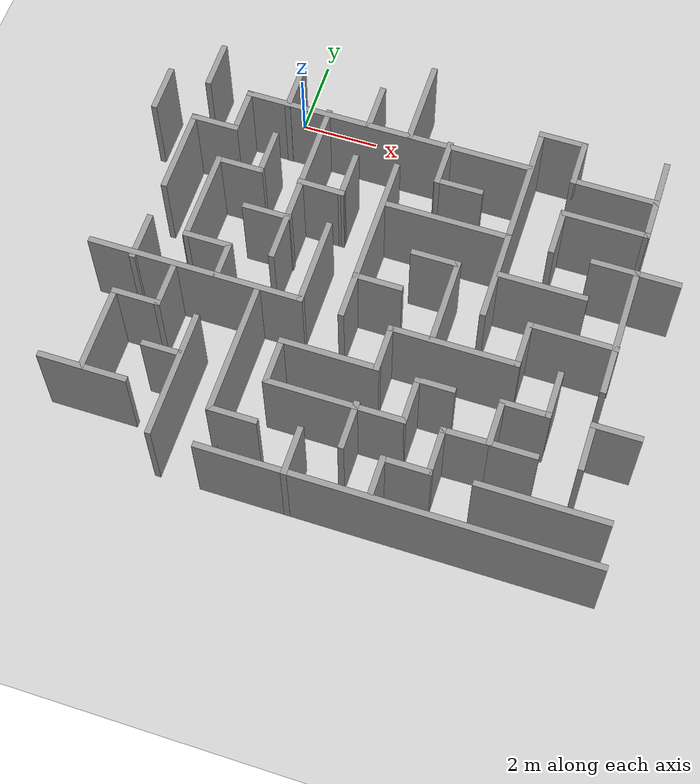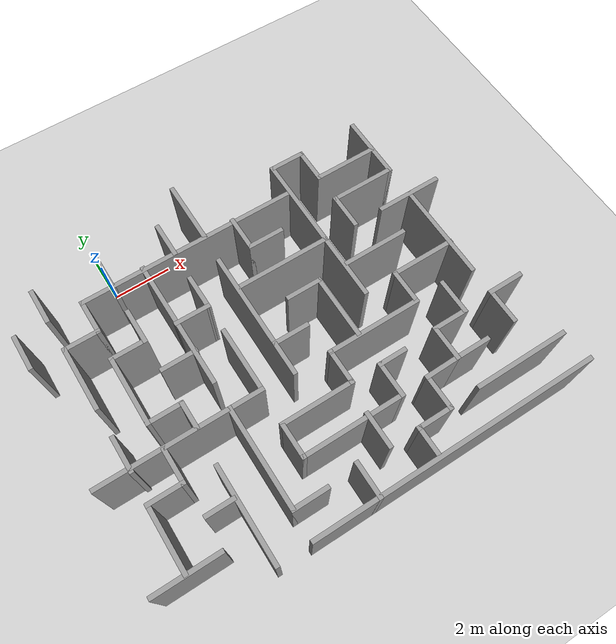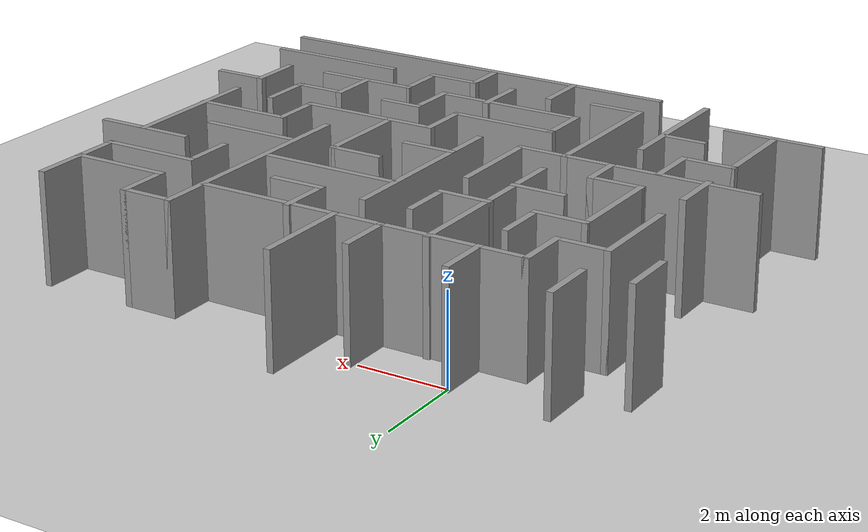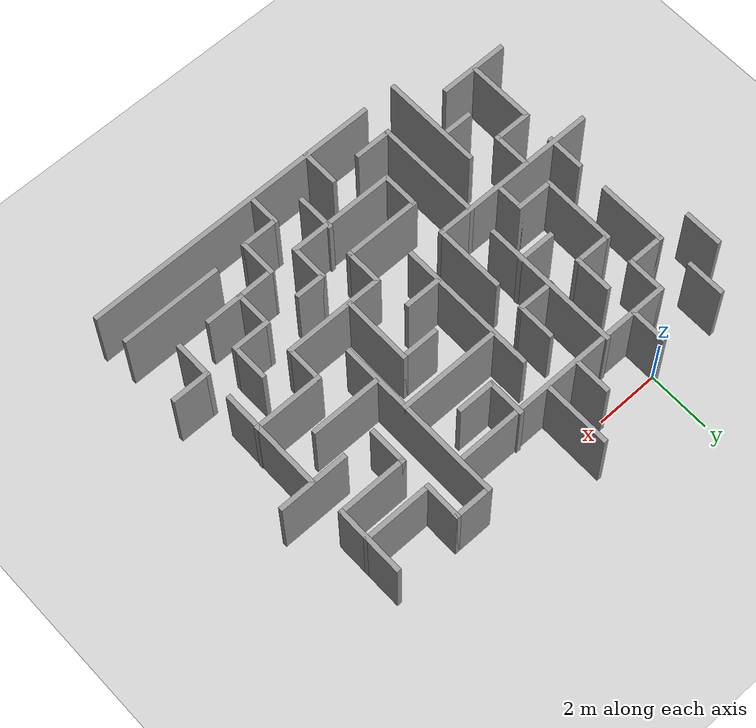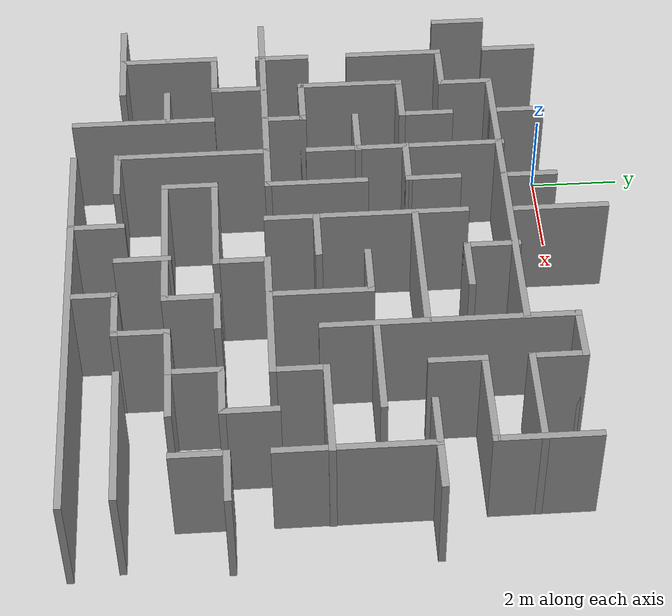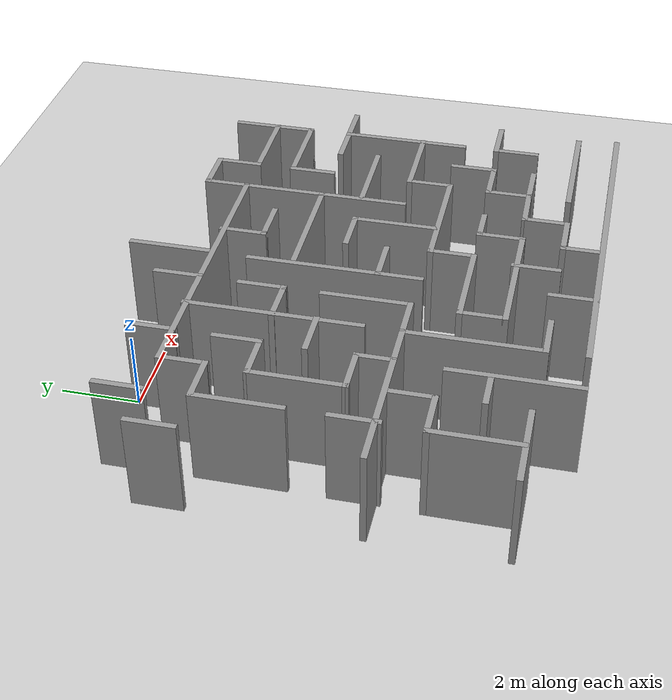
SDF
<sdf version="1.7">
 <world name="default">
  <model name="ground_plane">
   <static>1</static>
   <link name="link">
    <collision name="collision">
     <geometry><plane><normal>0 0 1</normal><size>100 100</size></plane></geometry>
     <surface><friction><ode><mu>100</mu><mu2>50</mu2></ode></friction></surface>
    </collision>
    <visual name="visual">
     <cast_shadows>0</cast_shadows>
     <geometry><plane><normal>0 0 1</normal><size>100 100</size></plane></geometry>
     <material>
      <script><uri>file://media/materials/scripts/gazebo.material</uri><name>Gazebo/Grey</name></script>
     </material>
    </visual>
   </link>
  </model>
  <model name="Maze_ej4">
   <pose>-0.00055 0.06164 0 0 -0 0</pose>
   <link name="Wall_103">
    <collision name="Wall_103_Collision">
     <geometry><box><size>1.25 0.15 2.5</size></box></geometry>
     <pose>0 0 1.25 0 -0 0</pose>
    </collision>
    <visual name="Wall_103_Visual">
     <pose>0 0 1.25 0 -0 0</pose>
     <geometry><box><size>1.25 0.15 2.5</size></box></geometry>
     <material>
      <script><uri>file://media/materials/scripts/gazebo.material</uri><name>Gazebo/Grey</name></script>
      <ambient>1 1 1 1</ambient>
     </material>
     <meta><layer>0</layer></meta>
    </visual>
    <pose>-1.63534 -7.51693 0 0 -0 0</pose>
   </link>
   <link name="Wall_104">
    <collision name="Wall_104_Collision">
     <geometry><box><size>1.25 0.15 2.5</size></box></geometry>
     <pose>0 0 1.25 0 -0 0</pose>
    </collision>
    <visual name="Wall_104_Visual">
     <pose>0 0 1.25 0 -0 0</pose>
     <geometry><box><size>1.25 0.15 2.5</size></box></geometry>
     <material>
      <script><uri>file://media/materials/scripts/gazebo.material</uri><name>Gazebo/Grey</name></script>
      <ambient>1 1 1 1</ambient>
     </material>
     <meta><layer>0</layer></meta>
    </visual>
    <pose>-1.08534 -6.96694 0 0 -0 1.5708</pose>
   </link>
   <link name="Wall_116">
    <collision name="Wall_116_Collision">
     <geometry><box><size>2.25 0.15 2.5</size></box></geometry>
     <pose>0 0 1.25 0 -0 0</pose>
    </collision>
    <visual name="Wall_116_Visual">
     <pose>0 0 1.25 0 -0 0</pose>
     <geometry><box><size>2.25 0.15 2.5</size></box></geometry>
     <material>
      <script><uri>file://media/materials/scripts/gazebo.material</uri><name>Gazebo/Grey</name></script>
      <ambient>1 1 1 1</ambient>
     </material>
     <meta><layer>0</layer></meta>
    </visual>
    <pose>8.55467 -5.36811 0 0 -0 3.14159</pose>
   </link>
   <link name="Wall_117">
    <collision name="Wall_117_Collision">
     <geometry><box><size>1.25 0.15 2.5</size></box></geometry>
     <pose>0 0 1.25 0 -0 0</pose>
    </collision>
    <visual name="Wall_117_Visual">
     <pose>0 0 1.25 0 -0 0</pose>
     <geometry><box><size>1.25 0.15 2.5</size></box></geometry>
     <material>
      <script><uri>file://media/materials/scripts/gazebo.material</uri><name>Gazebo/Grey</name></script>
      <ambient>1 1 1 1</ambient>
     </material>
     <meta><layer>0</layer></meta>
    </visual>
    <pose>7.50467 -5.91811 0 0 -0 -1.5708</pose>
   </link>
   <link name="Wall_118">
    <collision name="Wall_118_Collision">
     <geometry><box><size>3.25 0.15 2.5</size></box></geometry>
     <pose>0 0 1.25 0 -0 0</pose>
    </collision>
    <visual name="Wall_118_Visual">
     <pose>0 0 1.25 0 -0 0</pose>
     <geometry><box><size>3.25 0.15 2.5</size></box></geometry>
     <material>
      <script><uri>file://media/materials/scripts/gazebo.material</uri><name>Gazebo/Grey</name></script>
      <ambient>1 1 1 1</ambient>
     </material>
     <meta><layer>0</layer></meta>
    </visual>
    <pose>5.95467 -6.46811 0 0 -0 3.14159</pose>
   </link>
   <link name="Wall_119">
    <collision name="Wall_119_Collision">
     <geometry><box><size>1.25 0.15 2.5</size></box></geometry>
     <pose>0 0 1.25 0 -0 0</pose>
    </collision>
    <visual name="Wall_119_Visual">
     <pose>0 0 1.25 0 -0 0</pose>
     <geometry><box><size>1.25 0.15 2.5</size></box></geometry>
     <material>
      <script><uri>file://media/materials/scripts/gazebo.material</uri><name>Gazebo/Grey</name></script>
      <ambient>1 1 1 1</ambient>
     </material>
     <meta><layer>0</layer></meta>
    </visual>
    <pose>4.40467 -7.01811 0 0 -0 -1.5708</pose>
   </link>
   <link name="Wall_120">
    <collision name="Wall_120_Collision">
     <geometry><box><size>2.5 0.15 2.5</size></box></geometry>
     <pose>0 0 1.25 0 -0 0</pose>
    </collision>
    <visual name="Wall_120_Visual">
     <pose>0 0 1.25 0 -0 0</pose>
     <geometry><box><size>2.5 0.15 2.5</size></box></geometry>
     <material>
      <script><uri>file://media/materials/scripts/gazebo.material</uri><name>Gazebo/Grey</name></script>
      <ambient>1 1 1 1</ambient>
     </material>
     <meta><layer>0</layer></meta>
    </visual>
    <pose>3.22967 -7.56811 0 0 -0 3.14159</pose>
   </link>
   <link name="Wall_121">
    <collision name="Wall_121_Collision">
     <geometry><box><size>1.25 0.15 2.5</size></box></geometry>
     <pose>0 0 1.25 0 -0 0</pose>
    </collision>
    <visual name="Wall_121_Visual">
     <pose>0 0 1.25 0 -0 0</pose>
     <geometry><box><size>1.25 0.15 2.5</size></box></geometry>
     <material>
      <script><uri>file://media/materials/scripts/gazebo.material</uri><name>Gazebo/Grey</name></script>
      <ambient>1 1 1 1</ambient>
     </material>
     <meta><layer>0</layer></meta>
    </visual>
    <pose>2.05467 -8.11811 0 0 -0 -1.5708</pose>
   </link>
   <link name="Wall_122">
    <collision name="Wall_122_Collision">
     <geometry><box><size>3.5 0.15 2.5</size></box></geometry>
     <pose>0 0 1.25 0 -0 0</pose>
    </collision>
    <visual name="Wall_122_Visual">
     <pose>0 0 1.25 0 -0 0</pose>
     <geometry><box><size>3.5 0.15 2.5</size></box></geometry>
     <material>
      <script><uri>file://media/materials/scripts/gazebo.material</uri><name>Gazebo/Grey</name></script>
      <ambient>1 1 1 1</ambient>
     </material>
     <meta><layer>0</layer></meta>
    </visual>
    <pose>3.72967 -8.66811 0 0 -0 0</pose>
   </link>
   <link name="Wall_123">
    <collision name="Wall_123_Collision">
     <geometry><box><size>1.25 0.15 2.5</size></box></geometry>
     <pose>0 0 1.25 0 -0 0</pose>
    </collision>
    <visual name="Wall_123_Visual">
     <pose>0 0 1.25 0 -0 0</pose>
     <geometry><box><size>1.25 0.15 2.5</size></box></geometry>
     <material>
      <script><uri>file://media/materials/scripts/gazebo.material</uri><name>Gazebo/Grey</name></script>
      <ambient>1 1 1 1</ambient>
     </material>
     <meta><layer>0</layer></meta>
    </visual>
    <pose>5.40467 -8.11811 0 0 -0 1.5708</pose>
   </link>
   <link name="Wall_124">
    <collision name="Wall_124_Collision">
     <geometry><box><size>1 0.15 2.5</size></box></geometry>
     <pose>0 0 1.25 0 -0 0</pose>
    </collision>
    <visual name="Wall_124_Visual">
     <pose>0 0 1.25 0 -0 0</pose>
     <geometry><box><size>1 0.15 2.5</size></box></geometry>
     <material>
      <script><uri>file://media/materials/scripts/gazebo.material</uri><name>Gazebo/Grey</name></script>
      <ambient>1 1 1 1</ambient>
     </material>
     <meta><layer>0</layer></meta>
    </visual>
    <pose>5.82967 -7.56811 0 0 -0 0</pose>
   </link>
   <link name="Wall_129">
    <collision name="Wall_129_Collision">
     <geometry><box><size>1.25 0.15 2.5</size></box></geometry>
     <pose>0 0 1.25 0 -0 0</pose>
    </collision>
    <visual name="Wall_129_Visual">
     <pose>0 0 1.25 0 -0 0</pose>
     <geometry><box><size>1.25 0.15 2.5</size></box></geometry>
     <material>
      <script><uri>file://media/materials/scripts/gazebo.material</uri><name>Gazebo/Grey</name></script>
      <ambient>1 1 1 1</ambient>
     </material>
     <meta><layer>0</layer></meta>
    </visual>
    <pose>3.20667 -10.1551 0 0 -0 1.5708</pose>
   </link>
   <link name="Wall_131">
    <collision name="Wall_131_Collision">
     <geometry><box><size>1.25 0.15 2.5</size></box></geometry>
     <pose>0 0 1.25 0 -0 0</pose>
    </collision>
    <visual name="Wall_131_Visual">
     <pose>0 0 1.25 0 -0 0</pose>
     <geometry><box><size>1.25 0.15 2.5</size></box></geometry>
     <material>
      <script><uri>file://media/materials/scripts/gazebo.material</uri><name>Gazebo/Grey</name></script>
      <ambient>1 1 1 1</ambient>
     </material>
     <meta><layer>0</layer></meta>
    </visual>
    <pose>8.53131 -6.96633 0 0 -0 -1.5708</pose>
   </link>
   <link name="Wall_132">
    <collision name="Wall_132_Collision">
     <geometry><box><size>1.25 0.15 2.5</size></box></geometry>
     <pose>0 0 1.25 0 -0 0</pose>
    </collision>
    <visual name="Wall_132_Visual">
     <pose>0 0 1.25 0 -0 0</pose>
     <geometry><box><size>1.25 0.15 2.5</size></box></geometry>
     <material>
      <script><uri>file://media/materials/scripts/gazebo.material</uri><name>Gazebo/Grey</name></script>
      <ambient>1 1 1 1</ambient>
     </material>
     <meta><layer>0</layer></meta>
    </visual>
    <pose>7.98132 -7.51633 0 0 -0 3.14159</pose>
   </link>
   <link name="Wall_133">
    <collision name="Wall_133_Collision">
     <geometry><box><size>1.23183 0.15 2.5</size></box></geometry>
     <pose>0 0 1.25 0 -0 0</pose>
    </collision>
    <visual name="Wall_133_Visual">
     <pose>0 0 1.25 0 -0 0</pose>
     <geometry><box><size>1.23183 0.15 2.5</size></box></geometry>
     <material>
      <script><uri>file://media/materials/scripts/gazebo.material</uri><name>Gazebo/Grey</name></script>
      <ambient>1 1 1 1</ambient>
     </material>
     <meta><layer>0</layer></meta>
    </visual>
    <pose>7.43131 -8.05724 0 0 -0 -1.5708</pose>
   </link>
   <link name="Wall_134">
    <collision name="Wall_134_Collision">
     <geometry><box><size>1.25015 0.15 2.5</size></box></geometry>
     <pose>0 0 1.25 0 -0 0</pose>
    </collision>
    <visual name="Wall_134_Visual">
     <pose>0 0 1.25 0 -0 0</pose>
     <geometry><box><size>1.25015 0.15 2.5</size></box></geometry>
     <material>
      <script><uri>file://media/materials/scripts/gazebo.material</uri><name>Gazebo/Grey</name></script>
      <ambient>1 1 1 1</ambient>
     </material>
     <meta><layer>0</layer></meta>
    </visual>
    <pose>6.88131 -8.60724 0 0 -0 -3.12507</pose>
   </link>
   <link name="Wall_135">
    <collision name="Wall_135_Collision">
     <geometry><box><size>1.25 0.15 2.5</size></box></geometry>
     <pose>0 0 1.25 0 -0 0</pose>
    </collision>
    <visual name="Wall_135_Visual">
     <pose>0 0 1.25 0 -0 0</pose>
     <geometry><box><size>1.25 0.15 2.5</size></box></geometry>
     <material>
      <script><uri>file://media/materials/scripts/gazebo.material</uri><name>Gazebo/Grey</name></script>
      <ambient>1 1 1 1</ambient>
     </material>
     <meta><layer>0</layer></meta>
    </visual>
    <pose>6.33132 -9.16633 0 0 -0 -1.5708</pose>
   </link>
   <link name="Wall_136">
    <collision name="Wall_136_Collision">
     <geometry><box><size>1.25 0.15 2.5</size></box></geometry>
     <pose>0 0 1.25 0 -0 0</pose>
    </collision>
    <visual name="Wall_136_Visual">
     <pose>0 0 1.25 0 -0 0</pose>
     <geometry><box><size>1.25 0.15 2.5</size></box></geometry>
     <material>
      <script><uri>file://media/materials/scripts/gazebo.material</uri><name>Gazebo/Grey</name></script>
      <ambient>1 1 1 1</ambient>
     </material>
     <meta><layer>0</layer></meta>
    </visual>
    <pose>5.78132 -9.71633 0 0 -0 3.14159</pose>
   </link>
   <link name="Wall_137">
    <collision name="Wall_137_Collision">
     <geometry><box><size>1 0.15 2.5</size></box></geometry>
     <pose>0 0 1.25 0 -0 0</pose>
    </collision>
    <visual name="Wall_137_Visual">
     <pose>0 0 1.25 0 -0 0</pose>
     <geometry><box><size>1 0.15 2.5</size></box></geometry>
     <material>
      <script><uri>file://media/materials/scripts/gazebo.material</uri><name>Gazebo/Grey</name></script>
      <ambient>1 1 1 1</ambient>
     </material>
     <meta><layer>0</layer></meta>
    </visual>
    <pose>5.23132 -10.1413 0 0 -0 -1.5708</pose>
   </link>
   <link name="Wall_14">
    <collision name="Wall_14_Collision">
     <geometry><box><size>9.75 0.15 2.5</size></box></geometry>
     <pose>0 0 1.25 0 -0 0</pose>
    </collision>
    <visual name="Wall_14_Visual">
     <pose>0 0 1.25 0 -0 0</pose>
     <geometry><box><size>9.75 0.15 2.5</size></box></geometry>
     <material>
      <script><uri>file://media/materials/scripts/gazebo.material</uri><name>Gazebo/Grey</name></script>
      <ambient>1 1 1 1</ambient>
     </material>
     <meta><layer>0</layer></meta>
    </visual>
    <pose>5.86667 -10.7039 0 0 -0 0</pose>
   </link>
   <link name="Wall_141">
    <collision name="Wall_141_Collision">
     <geometry><box><size>1.25 0.15 2.5</size></box></geometry>
     <pose>0 0 1.25 0 -0 0</pose>
    </collision>
    <visual name="Wall_141_Visual">
     <pose>0 0 1.25 0 -0 0</pose>
     <geometry><box><size>1.25 0.15 2.5</size></box></geometry>
     <material>
      <script><uri>file://media/materials/scripts/gazebo.material</uri><name>Gazebo/Grey</name></script>
      <ambient>1 1 1 1</ambient>
     </material>
     <meta><layer>0</layer></meta>
    </visual>
    <pose>7.98132 -8.59816 0 0 -0 0</pose>
   </link>
   <link name="Wall_143">
    <collision name="Wall_143_Collision">
     <geometry><box><size>3.25 0.15 2.5</size></box></geometry>
     <pose>0 0 1.25 0 -0 0</pose>
    </collision>
    <visual name="Wall_143_Visual">
     <pose>0 0 1.25 0 -0 0</pose>
     <geometry><box><size>3.25 0.15 2.5</size></box></geometry>
     <material>
      <script><uri>file://media/materials/scripts/gazebo.material</uri><name>Gazebo/Grey</name></script>
      <ambient>1 1 1 1</ambient>
     </material>
     <meta><layer>0</layer></meta>
    </visual>
    <pose>8.97277 -9.65109 0 0 -0 0</pose>
   </link>
   <link name="Wall_145">
    <collision name="Wall_145_Collision">
     <geometry><box><size>1.25 0.15 2.5</size></box></geometry>
     <pose>0 0 1.25 0 -0 0</pose>
    </collision>
    <visual name="Wall_145_Visual">
     <pose>0 0 1.25 0 -0 0</pose>
     <geometry><box><size>1.25 0.15 2.5</size></box></geometry>
     <material>
      <script><uri>file://media/materials/scripts/gazebo.material</uri><name>Gazebo/Grey</name></script>
      <ambient>1 1 1 1</ambient>
     </material>
     <meta><layer>0</layer></meta>
    </visual>
    <pose>9.58534 -7.99255 0 0 -0 1.5708</pose>
   </link>
   <link name="Wall_146">
    <collision name="Wall_146_Collision">
     <geometry><box><size>1.25 0.15 2.5</size></box></geometry>
     <pose>0 0 1.25 0 -0 0</pose>
    </collision>
    <visual name="Wall_146_Visual">
     <pose>0 0 1.25 0 -0 0</pose>
     <geometry><box><size>1.25 0.15 2.5</size></box></geometry>
     <material>
      <script><uri>file://media/materials/scripts/gazebo.material</uri><name>Gazebo/Grey</name></script>
      <ambient>1 1 1 1</ambient>
     </material>
     <meta><layer>0</layer></meta>
    </visual>
    <pose>10.1353 -7.44255 0 0 -0 0</pose>
   </link>
   <link name="Wall_148">
    <collision name="Wall_148_Collision">
     <geometry><box><size>3.42111 0.15 2.5</size></box></geometry>
     <pose>0 0 1.25 0 -0 0</pose>
    </collision>
    <visual name="Wall_148_Visual">
     <pose>0 0 1.25 0 -0 0</pose>
     <geometry><box><size>3.42111 0.15 2.5</size></box></geometry>
     <material>
      <script><uri>file://media/materials/scripts/gazebo.material</uri><name>Gazebo/Grey</name></script>
      <ambient>1 1 1 1</ambient>
     </material>
     <meta><layer>0</layer></meta>
    </visual>
    <pose>9.58534 -4.87164 0 0 -0 1.5708</pose>
   </link>
   <link name="Wall_150">
    <collision name="Wall_150_Collision">
     <geometry><box><size>2.25 0.15 2.5</size></box></geometry>
     <pose>0 0 1.25 0 -0 0</pose>
    </collision>
    <visual name="Wall_150_Visual">
     <pose>0 0 1.25 0 -0 0</pose>
     <geometry><box><size>2.25 0.15 2.5</size></box></geometry>
     <material>
      <script><uri>file://media/materials/scripts/gazebo.material</uri><name>Gazebo/Grey</name></script>
      <ambient>1 1 1 1</ambient>
     </material>
     <meta><layer>0</layer></meta>
    </visual>
    <pose>9.56314 -3.23608 0 0 -0 0</pose>
   </link>
   <link name="Wall_152">
    <collision name="Wall_152_Collision">
     <geometry><box><size>1.25 0.15 2.5</size></box></geometry>
     <pose>0 0 1.25 0 -0 0</pose>
    </collision>
    <visual name="Wall_152_Visual">
     <pose>0 0 1.25 0 -0 0</pose>
     <geometry><box><size>1.25 0.15 2.5</size></box></geometry>
     <material>
      <script><uri>file://media/materials/scripts/gazebo.material</uri><name>Gazebo/Grey</name></script>
      <ambient>1 1 1 1</ambient>
     </material>
     <meta><layer>0</layer></meta>
    </visual>
    <pose>4.86522 -4.30828 0 0 -0 0</pose>
   </link>
   <link name="Wall_153">
    <collision name="Wall_153_Collision">
     <geometry><box><size>2.25 0.15 2.5</size></box></geometry>
     <pose>0 0 1.25 0 -0 0</pose>
    </collision>
    <visual name="Wall_153_Visual">
     <pose>0 0 1.25 0 -0 0</pose>
     <geometry><box><size>2.25 0.15 2.5</size></box></geometry>
     <material>
      <script><uri>file://media/materials/scripts/gazebo.material</uri><name>Gazebo/Grey</name></script>
      <ambient>1 1 1 1</ambient>
     </material>
     <meta><layer>0</layer></meta>
    </visual>
    <pose>5.41522 -5.35828 0 0 -0 -1.5708</pose>
   </link>
   <link name="Wall_155">
    <collision name="Wall_155_Collision">
     <geometry><box><size>4.5 0.15 2.5</size></box></geometry>
     <pose>0 0 1.25 0 -0 0</pose>
    </collision>
    <visual name="Wall_155_Visual">
     <pose>0 0 1.25 0 -0 0</pose>
     <geometry><box><size>4.5 0.15 2.5</size></box></geometry>
     <material>
      <script><uri>file://media/materials/scripts/gazebo.material</uri><name>Gazebo/Grey</name></script>
      <ambient>1 1 1 1</ambient>
     </material>
     <meta><layer>0</layer></meta>
    </visual>
    <pose>3.17033 -4.2595 0 0 -0 1.5708</pose>
   </link>
   <link name="Wall_157">
    <collision name="Wall_157_Collision">
     <geometry><box><size>5.5 0.15 2.5</size></box></geometry>
     <pose>0 0 1.25 0 -0 0</pose>
    </collision>
    <visual name="Wall_157_Visual">
     <pose>0 0 1.25 0 -0 0</pose>
     <geometry><box><size>5.5 0.15 2.5</size></box></geometry>
     <material>
      <script><uri>file://media/materials/scripts/gazebo.material</uri><name>Gazebo/Grey</name></script>
      <ambient>1 1 1 1</ambient>
     </material>
     <meta><layer>0</layer></meta>
    </visual>
    <pose>6.36875 -2.72365 0 0 -0 1.5708</pose>
   </link>
   <link name="Wall_158">
    <collision name="Wall_158_Collision">
     <geometry><box><size>1.25 0.15 2.5</size></box></geometry>
     <pose>0 0 1.25 0 -0 0</pose>
    </collision>
    <visual name="Wall_158_Visual">
     <pose>0 0 1.25 0 -0 0</pose>
     <geometry><box><size>1.25 0.15 2.5</size></box></geometry>
     <material>
      <script><uri>file://media/materials/scripts/gazebo.material</uri><name>Gazebo/Grey</name></script>
      <ambient>1 1 1 1</ambient>
     </material>
     <meta><layer>0</layer></meta>
    </visual>
    <pose>6.91875 -0.048649 0 0 -0 0</pose>
   </link>
   <link name="Wall_159">
    <collision name="Wall_159_Collision">
     <geometry><box><size>1.25 0.15 2.5</size></box></geometry>
     <pose>0 0 1.25 0 -0 0</pose>
    </collision>
    <visual name="Wall_159_Visual">
     <pose>0 0 1.25 0 -0 0</pose>
     <geometry><box><size>1.25 0.15 2.5</size></box></geometry>
     <material>
      <script><uri>file://media/materials/scripts/gazebo.material</uri><name>Gazebo/Grey</name></script>
      <ambient>1 1 1 1</ambient>
     </material>
     <meta><layer>0</layer></meta>
    </visual>
    <pose>7.46875 -0.598649 0 0 -0 -1.5708</pose>
   </link>
   <link name="Wall_160">
    <collision name="Wall_160_Collision">
     <geometry><box><size>2.25 0.15 2.5</size></box></geometry>
     <pose>0 0 1.25 0 -0 0</pose>
    </collision>
    <visual name="Wall_160_Visual">
     <pose>0 0 1.25 0 -0 0</pose>
     <geometry><box><size>2.25 0.15 2.5</size></box></geometry>
     <material>
      <script><uri>file://media/materials/scripts/gazebo.material</uri><name>Gazebo/Grey</name></script>
      <ambient>1 1 1 1</ambient>
     </material>
     <meta><layer>0</layer></meta>
    </visual>
    <pose>8.51875 -1.14865 0 0 -0 0</pose>
   </link>
   <link name="Wall_162">
    <collision name="Wall_162_Collision">
     <geometry><box><size>2.25 0.15 2.5</size></box></geometry>
     <pose>0 0 1.25 0 -0 0</pose>
    </collision>
    <visual name="Wall_162_Visual">
     <pose>0 0 1.25 0 -0 0</pose>
     <geometry><box><size>2.25 0.15 2.5</size></box></geometry>
     <material>
      <script><uri>file://media/materials/scripts/gazebo.material</uri><name>Gazebo/Grey</name></script>
      <ambient>1 1 1 1</ambient>
     </material>
     <meta><layer>0</layer></meta>
    </visual>
    <pose>7.51766 -4.27193 0 0 -0 3.14159</pose>
   </link>
   <link name="Wall_164">
    <collision name="Wall_164_Collision">
     <geometry><box><size>3.25 0.15 2.5</size></box></geometry>
     <pose>0 0 1.25 0 -0 0</pose>
    </collision>
    <visual name="Wall_164_Visual">
     <pose>0 0 1.25 0 -0 0</pose>
     <geometry><box><size>3.25 0.15 2.5</size></box></geometry>
     <material>
      <script><uri>file://media/materials/scripts/gazebo.material</uri><name>Gazebo/Grey</name></script>
      <ambient>1 1 1 1</ambient>
     </material>
     <meta><layer>0</layer></meta>
    </visual>
    <pose>4.81875 -3.19974 0 0 -0 3.14159</pose>
   </link>
   <link name="Wall_166">
    <collision name="Wall_166_Collision">
     <geometry><box><size>1.25 0.15 2.5</size></box></geometry>
     <pose>0 0 1.25 0 -0 0</pose>
    </collision>
    <visual name="Wall_166_Visual">
     <pose>0 0 1.25 0 -0 0</pose>
     <geometry><box><size>1.25 0.15 2.5</size></box></geometry>
     <material>
      <script><uri>file://media/materials/scripts/gazebo.material</uri><name>Gazebo/Grey</name></script>
      <ambient>1 1 1 1</ambient>
     </material>
     <meta><layer>0</layer></meta>
    </visual>
    <pose>3.72887 -5.3623 0 0 -0 3.14159</pose>
   </link>
   <link name="Wall_168">
    <collision name="Wall_168_Collision">
     <geometry><box><size>1.25 0.15 2.5</size></box></geometry>
     <pose>0 0 1.25 0 -0 0</pose>
    </collision>
    <visual name="Wall_168_Visual">
     <pose>0 0 1.25 0 -0 0</pose>
     <geometry><box><size>1.25 0.15 2.5</size></box></geometry>
     <material>
      <script><uri>file://media/materials/scripts/gazebo.material</uri><name>Gazebo/Grey</name></script>
      <ambient>1 1 1 1</ambient>
     </material>
     <meta><layer>0</layer></meta>
    </visual>
    <pose>-0.00992 -2.67754 0 0 -0 -1.5708</pose>
   </link>
   <link name="Wall_171">
    <collision name="Wall_171_Collision">
     <geometry><box><size>1.25 0.15 2.5</size></box></geometry>
     <pose>0 0 1.25 0 -0 0</pose>
    </collision>
    <visual name="Wall_171_Visual">
     <pose>0 0 1.25 0 -0 0</pose>
     <geometry><box><size>1.25 0.15 2.5</size></box></geometry>
     <material>
      <script><uri>file://media/materials/scripts/gazebo.material</uri><name>Gazebo/Grey</name></script>
      <ambient>1 1 1 1</ambient>
     </material>
     <meta><layer>0</layer></meta>
    </visual>
    <pose>-0.55992 -3.22754 0 0 -0 3.14159</pose>
   </link>
   <link name="Wall_172">
    <collision name="Wall_172_Collision">
     <geometry><box><size>2.43059 0.15 2.5</size></box></geometry>
     <pose>0 0 1.25 0 -0 0</pose>
    </collision>
    <visual name="Wall_172_Visual">
     <pose>0 0 1.25 0 -0 0</pose>
     <geometry><box><size>2.43059 0.15 2.5</size></box></geometry>
     <material>
      <script><uri>file://media/materials/scripts/gazebo.material</uri><name>Gazebo/Grey</name></script>
      <ambient>1 1 1 1</ambient>
     </material>
     <meta><layer>0</layer></meta>
    </visual>
    <pose>-1.11419 -4.36761 0 0 -0 -1.57454</pose>
   </link>
   <link name="Wall_173">
    <collision name="Wall_173_Collision">
     <geometry><box><size>1.25 0.15 2.5</size></box></geometry>
     <pose>0 0 1.25 0 -0 0</pose>
    </collision>
    <visual name="Wall_173_Visual">
     <pose>0 0 1.25 0 -0 0</pose>
     <geometry><box><size>1.25 0.15 2.5</size></box></geometry>
     <material>
      <script><uri>file://media/materials/scripts/gazebo.material</uri><name>Gazebo/Grey</name></script>
      <ambient>1 1 1 1</ambient>
     </material>
     <meta><layer>0</layer></meta>
    </visual>
    <pose>-0.568463 -5.50769 0 0 -0 0</pose>
   </link>
   <link name="Wall_174">
    <collision name="Wall_174_Collision">
     <geometry><box><size>1 0.15 2.5</size></box></geometry>
     <pose>0 0 1.25 0 -0 0</pose>
    </collision>
    <visual name="Wall_174_Visual">
     <pose>0 0 1.25 0 -0 0</pose>
     <geometry><box><size>1 0.15 2.5</size></box></geometry>
     <material>
      <script><uri>file://media/materials/scripts/gazebo.material</uri><name>Gazebo/Grey</name></script>
      <ambient>1 1 1 1</ambient>
     </material>
     <meta><layer>0</layer></meta>
    </visual>
    <pose>-0.018463 -5.93269 0 0 -0 -1.5708</pose>
   </link>
   <link name="Wall_176">
    <collision name="Wall_176_Collision">
     <geometry><box><size>4.5 0.15 2.5</size></box></geometry>
     <pose>0 0 1.25 0 -0 0</pose>
    </collision>
    <visual name="Wall_176_Visual">
     <pose>0 0 1.25 0 -0 0</pose>
     <geometry><box><size>4.5 0.15 2.5</size></box></geometry>
     <material>
      <script><uri>file://media/materials/scripts/gazebo.material</uri><name>Gazebo/Grey</name></script>
      <ambient>1 1 1 1</ambient>
     </material>
     <meta><layer>0</layer></meta>
    </visual>
    <pose>1.06228 -3.24182 0 0 -0 1.5708</pose>
   </link>
   <link name="Wall_178">
    <collision name="Wall_178_Collision">
     <geometry><box><size>1.25 0.15 2.5</size></box></geometry>
     <pose>0 0 1.25 0 -0 0</pose>
    </collision>
    <visual name="Wall_178_Visual">
     <pose>0 0 1.25 0 -0 0</pose>
     <geometry><box><size>1.25 0.15 2.5</size></box></geometry>
     <material>
      <script><uri>file://media/materials/scripts/gazebo.material</uri><name>Gazebo/Grey</name></script>
      <ambient>1 1 1 1</ambient>
     </material>
     <meta><layer>0</layer></meta>
    </visual>
    <pose>2.1163 -2.69571 0 0 -0 -1.5708</pose>
   </link>
   <link name="Wall_179">
    <collision name="Wall_179_Collision">
     <geometry><box><size>1.22224 0.15 2.5</size></box></geometry>
     <pose>0 0 1.25 0 -0 0</pose>
    </collision>
    <visual name="Wall_179_Visual">
     <pose>0 0 1.25 0 -0 0</pose>
     <geometry><box><size>1.22224 0.15 2.5</size></box></geometry>
     <material>
      <script><uri>file://media/materials/scripts/gazebo.material</uri><name>Gazebo/Grey</name></script>
      <ambient>1 1 1 1</ambient>
     </material>
     <meta><layer>0</layer></meta>
    </visual>
    <pose>1.5802 -3.2409 0 0 -0 3.13261</pose>
   </link>
   <link name="Wall_181">
    <collision name="Wall_181_Collision">
     <geometry><box><size>1.25 0.15 2.5</size></box></geometry>
     <pose>0 0 1.25 0 -0 0</pose>
    </collision>
    <visual name="Wall_181_Visual">
     <pose>0 0 1.25 0 -0 0</pose>
     <geometry><box><size>1.25 0.15 2.5</size></box></geometry>
     <material>
      <script><uri>file://media/materials/scripts/gazebo.material</uri><name>Gazebo/Grey</name></script>
      <ambient>1 1 1 1</ambient>
     </material>
     <meta><layer>0</layer></meta>
    </visual>
    <pose>0.54008 -4.30828 0 0 -0 0</pose>
   </link>
   <link name="Wall_183">
    <collision name="Wall_183_Collision">
     <geometry><box><size>1.25 0.15 2.5</size></box></geometry>
     <pose>0 0 1.25 0 -0 0</pose>
    </collision>
    <visual name="Wall_183_Visual">
     <pose>0 0 1.25 0 -0 0</pose>
     <geometry><box><size>1.25 0.15 2.5</size></box></geometry>
     <material>
      <script><uri>file://media/materials/scripts/gazebo.material</uri><name>Gazebo/Grey</name></script>
      <ambient>1 1 1 1</ambient>
     </material>
     <meta><layer>0</layer></meta>
    </visual>
    <pose>-2.13614 -5.9123 0 0 -0 -1.5708</pose>
   </link>
   <link name="Wall_19">
    <collision name="Wall_19_Collision">
     <geometry><box><size>3.25 0.15 2.5</size></box></geometry>
     <pose>0 0 1.25 0 -0 0</pose>
    </collision>
    <visual name="Wall_19_Visual">
     <pose>0 0 1.25 0 -0 0</pose>
     <geometry><box><size>3.25 0.15 2.5</size></box></geometry>
     <material>
      <script><uri>file://media/materials/scripts/gazebo.material</uri><name>Gazebo/Grey</name></script>
      <ambient>1 1 1 1</ambient>
     </material>
     <meta><layer>0</layer></meta>
    </visual>
    <pose>-0.083328 -9.1539 0 0 -0 1.5708</pose>
   </link>
   <link name="Wall_191">
    <collision name="Wall_191_Collision">
     <geometry><box><size>2.25 0.15 2.5</size></box></geometry>
     <pose>0 0 1.25 0 -0 0</pose>
    </collision>
    <visual name="Wall_191_Visual">
     <pose>0 0 1.25 0 -0 0</pose>
     <geometry><box><size>2.25 0.15 2.5</size></box></geometry>
     <material>
      <script><uri>file://media/materials/scripts/gazebo.material</uri><name>Gazebo/Grey</name></script>
      <ambient>1 1 1 1</ambient>
     </material>
     <meta><layer>0</layer></meta>
    </visual>
    <pose>-2.1319 -3.27188 0 0 -0 1.5708</pose>
   </link>
   <link name="Wall_192">
    <collision name="Wall_192_Collision">
     <geometry><box><size>1.25 0.15 2.5</size></box></geometry>
     <pose>0 0 1.25 0 -0 0</pose>
    </collision>
    <visual name="Wall_192_Visual">
     <pose>0 0 1.25 0 -0 0</pose>
     <geometry><box><size>1.25 0.15 2.5</size></box></geometry>
     <material>
      <script><uri>file://media/materials/scripts/gazebo.material</uri><name>Gazebo/Grey</name></script>
      <ambient>1 1 1 1</ambient>
     </material>
     <meta><layer>0</layer></meta>
    </visual>
    <pose>-1.5819 -2.22188 0 0 -0 0</pose>
   </link>
   <link name="Wall_193">
    <collision name="Wall_193_Collision">
     <geometry><box><size>1.25 0.15 2.5</size></box></geometry>
     <pose>0 0 1.25 0 -0 0</pose>
    </collision>
    <visual name="Wall_193_Visual">
     <pose>0 0 1.25 0 -0 0</pose>
     <geometry><box><size>1.25 0.15 2.5</size></box></geometry>
     <material>
      <script><uri>file://media/materials/scripts/gazebo.material</uri><name>Gazebo/Grey</name></script>
      <ambient>1 1 1 1</ambient>
     </material>
     <meta><layer>0</layer></meta>
    </visual>
    <pose>-1.0319 -1.67188 0 0 -0 1.5708</pose>
   </link>
   <link name="Wall_194">
    <collision name="Wall_194_Collision">
     <geometry><box><size>7.5 0.15 2.5</size></box></geometry>
     <pose>0 0 1.25 0 -0 0</pose>
    </collision>
    <visual name="Wall_194_Visual">
     <pose>0 0 1.25 0 -0 0</pose>
     <geometry><box><size>7.5 0.15 2.5</size></box></geometry>
     <material>
      <script><uri>file://media/materials/scripts/gazebo.material</uri><name>Gazebo/Grey</name></script>
      <ambient>1 1 1 1</ambient>
     </material>
     <meta><layer>0</layer></meta>
    </visual>
    <pose>2.6431 -1.12188 0 0 -0 0</pose>
   </link>
   <link name="Wall_196">
    <collision name="Wall_196_Collision">
     <geometry><box><size>1.25 0.15 2.5</size></box></geometry>
     <pose>0 0 1.25 0 -0 0</pose>
    </collision>
    <visual name="Wall_196_Visual">
     <pose>0 0 1.25 0 -0 0</pose>
     <geometry><box><size>1.25 0.15 2.5</size></box></geometry>
     <material>
      <script><uri>file://media/materials/scripts/gazebo.material</uri><name>Gazebo/Grey</name></script>
      <ambient>1 1 1 1</ambient>
     </material>
     <meta><layer>0</layer></meta>
    </visual>
    <pose>4.25677 -1.61398 0 0 -0 -1.5708</pose>
   </link>
   <link name="Wall_197">
    <collision name="Wall_197_Collision">
     <geometry><box><size>1.25 0.15 2.5</size></box></geometry>
     <pose>0 0 1.25 0 -0 0</pose>
    </collision>
    <visual name="Wall_197_Visual">
     <pose>0 0 1.25 0 -0 0</pose>
     <geometry><box><size>1.25 0.15 2.5</size></box></geometry>
     <material>
      <script><uri>file://media/materials/scripts/gazebo.material</uri><name>Gazebo/Grey</name></script>
      <ambient>1 1 1 1</ambient>
     </material>
     <meta><layer>0</layer></meta>
    </visual>
    <pose>4.80677 -2.16398 0 0 -0 0</pose>
   </link>
   <link name="Wall_199">
    <collision name="Wall_199_Collision">
     <geometry><box><size>1.25 0.15 2.5</size></box></geometry>
     <pose>0 0 1.25 0 -0 0</pose>
    </collision>
    <visual name="Wall_199_Visual">
     <pose>0 0 1.25 0 -0 0</pose>
     <geometry><box><size>1.25 0.15 2.5</size></box></geometry>
     <material>
      <script><uri>file://media/materials/scripts/gazebo.material</uri><name>Gazebo/Grey</name></script>
      <ambient>1 1 1 1</ambient>
     </material>
     <meta><layer>0</layer></meta>
    </visual>
    <pose>7.467 -2.67532 0 0 -0 1.5708</pose>
   </link>
   <link name="Wall_200">
    <collision name="Wall_200_Collision">
     <geometry><box><size>2.25 0.15 2.5</size></box></geometry>
     <pose>0 0 1.25 0 -0 0</pose>
    </collision>
    <visual name="Wall_200_Visual">
     <pose>0 0 1.25 0 -0 0</pose>
     <geometry><box><size>2.25 0.15 2.5</size></box></geometry>
     <material>
      <script><uri>file://media/materials/scripts/gazebo.material</uri><name>Gazebo/Grey</name></script>
      <ambient>1 1 1 1</ambient>
     </material>
     <meta><layer>0</layer></meta>
    </visual>
    <pose>8.517 -2.12532 0 0 -0 0</pose>
   </link>
   <link name="Wall_201">
    <collision name="Wall_201_Collision">
     <geometry><box><size>2.25 0.15 2.5</size></box></geometry>
     <pose>0 0 1.25 0 -0 0</pose>
    </collision>
    <visual name="Wall_201_Visual">
     <pose>0 0 1.25 0 -0 0</pose>
     <geometry><box><size>2.25 0.15 2.5</size></box></geometry>
     <material>
      <script><uri>file://media/materials/scripts/gazebo.material</uri><name>Gazebo/Grey</name></script>
      <ambient>1 1 1 1</ambient>
     </material>
     <meta><layer>0</layer></meta>
    </visual>
    <pose>9.567 -1.07532 0 0 -0 1.5708</pose>
   </link>
   <link name="Wall_205">
    <collision name="Wall_205_Collision">
     <geometry><box><size>1.25 0.15 2.5</size></box></geometry>
     <pose>0 0 1.25 0 -0 0</pose>
    </collision>
    <visual name="Wall_205_Visual">
     <pose>0 0 1.25 0 -0 0</pose>
     <geometry><box><size>1.25 0.15 2.5</size></box></geometry>
     <material>
      <script><uri>file://media/materials/scripts/gazebo.material</uri><name>Gazebo/Grey</name></script>
      <ambient>1 1 1 1</ambient>
     </material>
     <meta><layer>0</layer></meta>
    </visual>
    <pose>-2.16368 -0.533309 0 0 -0 -1.5708</pose>
   </link>
   <link name="Wall_208">
    <collision name="Wall_208_Collision">
     <geometry><box><size>1.25 0.15 2.5</size></box></geometry>
     <pose>0 0 1.25 0 -0 0</pose>
    </collision>
    <visual name="Wall_208_Visual">
     <pose>0 0 1.25 0 -0 0</pose>
     <geometry><box><size>1.25 0.15 2.5</size></box></geometry>
     <material>
      <script><uri>file://media/materials/scripts/gazebo.material</uri><name>Gazebo/Grey</name></script>
      <ambient>1 1 1 1</ambient>
     </material>
     <meta><layer>0</layer></meta>
    </visual>
    <pose>-3.21257 -1.64233 0 0 -0 1.5708</pose>
   </link>
   <link name="Wall_21">
    <collision name="Wall_21_Collision">
     <geometry><box><size>1 0.15 2.5</size></box></geometry>
     <pose>0 0 1.25 0 -0 0</pose>
    </collision>
    <visual name="Wall_21_Visual">
     <pose>0 0 1.25 0 -0 0</pose>
     <geometry><box><size>1 0.15 2.5</size></box></geometry>
     <material>
      <script><uri>file://media/materials/scripts/gazebo.material</uri><name>Gazebo/Grey</name></script>
      <ambient>1 1 1 1</ambient>
     </material>
     <meta><layer>0</layer></meta>
    </visual>
    <pose>-0.574567 -8.62093 0 0 -0 0</pose>
   </link>
   <link name="Wall_216">
    <collision name="Wall_216_Collision">
     <geometry><box><size>2.25 0.15 2.5</size></box></geometry>
     <pose>0 0 1.25 0 -0 0</pose>
    </collision>
    <visual name="Wall_216_Visual">
     <pose>0 0 1.25 0 -0 0</pose>
     <geometry><box><size>2.25 0.15 2.5</size></box></geometry>
     <material>
      <script><uri>file://media/materials/scripts/gazebo.material</uri><name>Gazebo/Grey</name></script>
      <ambient>1 1 1 1</ambient>
     </material>
     <meta><layer>0</layer></meta>
    </visual>
    <pose>3.21485 -0.055982 0 0 -0 -1.5708</pose>
   </link>
   <link name="Wall_218">
    <collision name="Wall_218_Collision">
     <geometry><box><size>1.25 0.15 2.5</size></box></geometry>
     <pose>0 0 1.25 0 -0 0</pose>
    </collision>
    <visual name="Wall_218_Visual">
     <pose>0 0 1.25 0 -0 0</pose>
     <geometry><box><size>1.25 0.15 2.5</size></box></geometry>
     <material>
      <script><uri>file://media/materials/scripts/gazebo.material</uri><name>Gazebo/Grey</name></script>
      <ambient>1 1 1 1</ambient>
     </material>
     <meta><layer>0</layer></meta>
    </visual>
    <pose>-0.00234 -0.580985 0 0 -0 -1.5708</pose>
   </link>
   <link name="Wall_222">
    <collision name="Wall_222_Collision">
     <geometry><box><size>1.25 0.15 2.5</size></box></geometry>
     <pose>0 0 1.25 0 -0 0</pose>
    </collision>
    <visual name="Wall_222_Visual">
     <pose>0 0 1.25 0 -0 0</pose>
     <geometry><box><size>1.25 0.15 2.5</size></box></geometry>
     <material>
      <script><uri>file://media/materials/scripts/gazebo.material</uri><name>Gazebo/Grey</name></script>
      <ambient>1 1 1 1</ambient>
     </material>
     <meta><layer>0</layer></meta>
    </visual>
    <pose>2.14311 -0.549201 0 0 -0 -1.5708</pose>
   </link>
   <link name="Wall_23">
    <collision name="Wall_23_Collision">
     <geometry><box><size>2.25 0.15 2.5</size></box></geometry>
     <pose>0 0 1.25 0 -0 0</pose>
    </collision>
    <visual name="Wall_23_Visual">
     <pose>0 0 1.25 0 -0 0</pose>
     <geometry><box><size>2.25 0.15 2.5</size></box></geometry>
     <material>
      <script><uri>file://media/materials/scripts/gazebo.material</uri><name>Gazebo/Grey</name></script>
      <ambient>1 1 1 1</ambient>
     </material>
     <meta><layer>0</layer></meta>
    </visual>
    <pose>-2.18534 -8.56693 0 0 -0 -1.5708</pose>
   </link>
   <link name="Wall_25">
    <collision name="Wall_25_Collision">
     <geometry><box><size>2.25 0.15 2.5</size></box></geometry>
     <pose>0 0 1.25 0 -0 0</pose>
    </collision>
    <visual name="Wall_25_Visual">
     <pose>0 0 1.25 0 -0 0</pose>
     <geometry><box><size>2.25 0.15 2.5</size></box></geometry>
     <material>
      <script><uri>file://media/materials/scripts/gazebo.material</uri><name>Gazebo/Grey</name></script>
      <ambient>1 1 1 1</ambient>
     </material>
     <meta><layer>0</layer></meta>
    </visual>
    <pose>-2.15757 -9.64316 0 0 -0 0</pose>
   </link>
   <link name="Wall_31">
    <collision name="Wall_31_Collision">
     <geometry><box><size>5.5 0.15 2.5</size></box></geometry>
     <pose>0 0 1.25 0 -0 0</pose>
    </collision>
    <visual name="Wall_31_Visual">
     <pose>0 0 1.25 0 -0 0</pose>
     <geometry><box><size>5.5 0.15 2.5</size></box></geometry>
     <material>
      <script><uri>file://media/materials/scripts/gazebo.material</uri><name>Gazebo/Grey</name></script>
      <ambient>1 1 1 1</ambient>
     </material>
     <meta><layer>0</layer></meta>
    </visual>
    <pose>-0.566629 -6.3767 0 0 -0 3.14159</pose>
   </link>
   <link name="Wall_33">
    <collision name="Wall_33_Collision">
     <geometry><box><size>2.30348 0.15 2.5</size></box></geometry>
     <pose>0 0 1.25 0 -0 0</pose>
    </collision>
    <visual name="Wall_33_Visual">
     <pose>0 0 1.25 0 -0 0</pose>
     <geometry><box><size>2.30348 0.15 2.5</size></box></geometry>
     <material>
      <script><uri>file://media/materials/scripts/gazebo.material</uri><name>Gazebo/Grey</name></script>
      <ambient>1 1 1 1</ambient>
     </material>
     <meta><layer>0</layer></meta>
    </visual>
    <pose>2.10837 -5.29996 0 0 -0 -1.5708</pose>
   </link>
   <link name="Wall_51">
    <collision name="Wall_51_Collision">
     <geometry><box><size>3.5 0.15 2.5</size></box></geometry>
     <pose>0 0 1.25 0 -0 0</pose>
    </collision>
    <visual name="Wall_51_Visual">
     <pose>0 0 1.25 0 -0 0</pose>
     <geometry><box><size>3.5 0.15 2.5</size></box></geometry>
     <material>
      <script><uri>file://media/materials/scripts/gazebo.material</uri><name>Gazebo/Grey</name></script>
      <ambient>1 1 1 1</ambient>
     </material>
     <meta><layer>0</layer></meta>
    </visual>
    <pose>1.04526 -8.0517 0 0 -0 -1.5708</pose>
   </link>
   <link name="Wall_52">
    <collision name="Wall_52_Collision">
     <geometry><box><size>1.25 0.15 2.5</size></box></geometry>
     <pose>0 0 1.25 0 -0 0</pose>
    </collision>
    <visual name="Wall_52_Visual">
     <pose>0 0 1.25 0 -0 0</pose>
     <geometry><box><size>1.25 0.15 2.5</size></box></geometry>
     <material>
      <script><uri>file://media/materials/scripts/gazebo.material</uri><name>Gazebo/Grey</name></script>
      <ambient>1 1 1 1</ambient>
     </material>
     <meta><layer>0</layer></meta>
    </visual>
    <pose>1.59526 -9.7267 0 0 -0 0</pose>
   </link>
   <link name="Wall_889">
    <collision name="Wall_889_Collision">
     <geometry><box><size>1.25 0.15 2.5</size></box></geometry>
     <pose>0 0 1.25 0 -0 0</pose>
    </collision>
    <visual name="Wall_889_Visual">
     <pose>0 0 1.25 0 -0 0</pose>
     <geometry><box><size>1.25 0.15 2.5</size></box></geometry>
     <material>
      <script><uri>file://media/materials/scripts/gazebo.material</uri><name>Gazebo/Grey</name></script>
      <ambient>1 1 1 1</ambient>
     </material>
     <meta><layer>0</layer></meta>
    </visual>
    <pose>4.24099 -9.14725 0 0 -0 -1.5708</pose>
   </link>
   <static>1</static>
  </model>
 </world>
</sdf>
